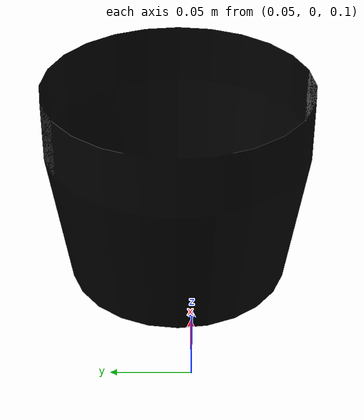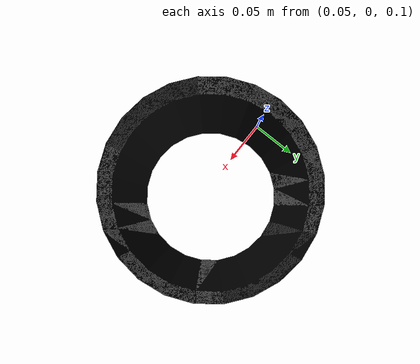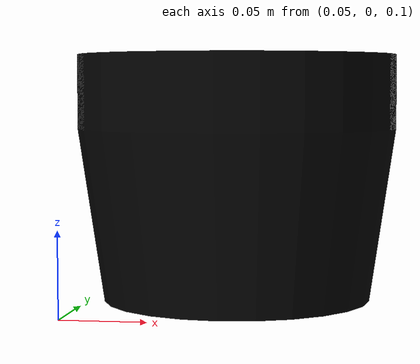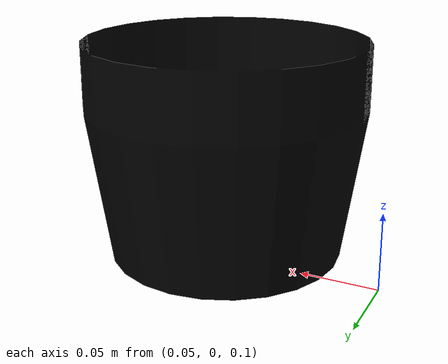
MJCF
<mujoco model="original-22">
  <default>
    <default class="visual">
      <geom group="2" type="mesh" contype="0" conaffinity="0"/>
    </default>
    <default class="collision">
      <geom group="3" type="mesh"/>
    </default>
  </default>
  <asset>
    <material name="material_0_0" specular="0.06666666666666667" shininess="0.03" rgba="0.13333333333333333 0.13333333333333333 0.13333333333333333 1"/>
    <material name="material_1_0" specular="0.06666666666666667" shininess="0.03" rgba="0 0 0 1"/>
    <mesh file="original-22_0.obj"/>
    <mesh file="original-22_1.obj"/>
  </asset>
  <worldbody>
    <body name="original-22">
      <geom mesh="original-22_0" material="material_1_0" class="visual"/>
      <geom mesh="original-22_1" material="material_0_0" class="visual"/>
      <geom mesh="original-22_0" class="collision"/>
      <geom mesh="original-22_1" class="collision"/>
    </body>
  </worldbody>
</mujoco>
